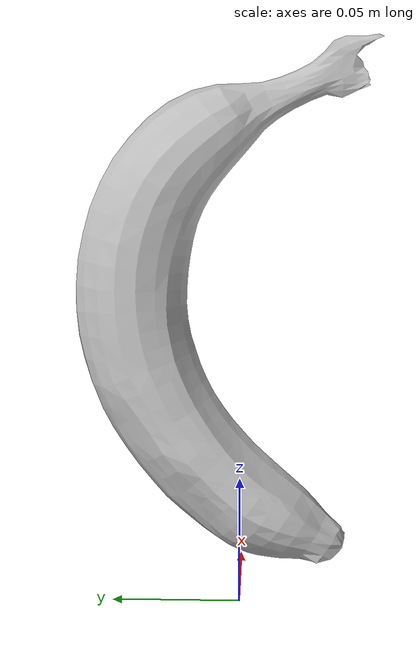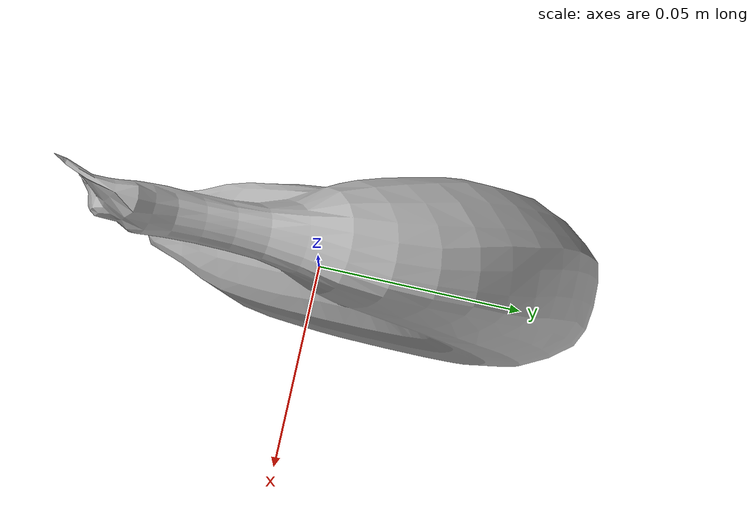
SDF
<?xml version='1.0' ?>
<sdf version="1.6">
    <model name="Banana for Scale">
        <static>true</static>
        <link name="link">
            <collision name="collision">
                <pose>0 0 0.12 0 0 1.5708</pose>
                <geometry>
                    <mesh>
                        <uri>meshes/Banana.dae</uri>
                    </mesh>
                </geometry>
            </collision>
            <visual name="visual">
                <pose>0 0 0.12 0 0 1.5708</pose>
                <geometry>
                    <mesh>
                        <uri>meshes/Banana.dae</uri>
                    </mesh>
                </geometry>
            </visual>
        </link>
    </model>
</sdf>
